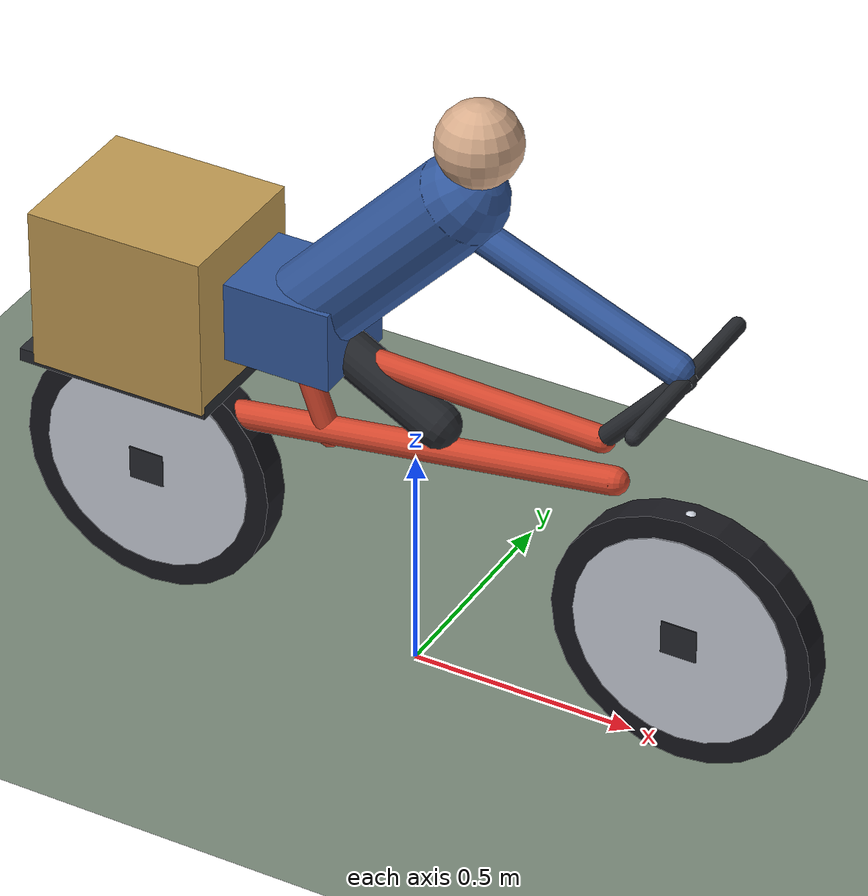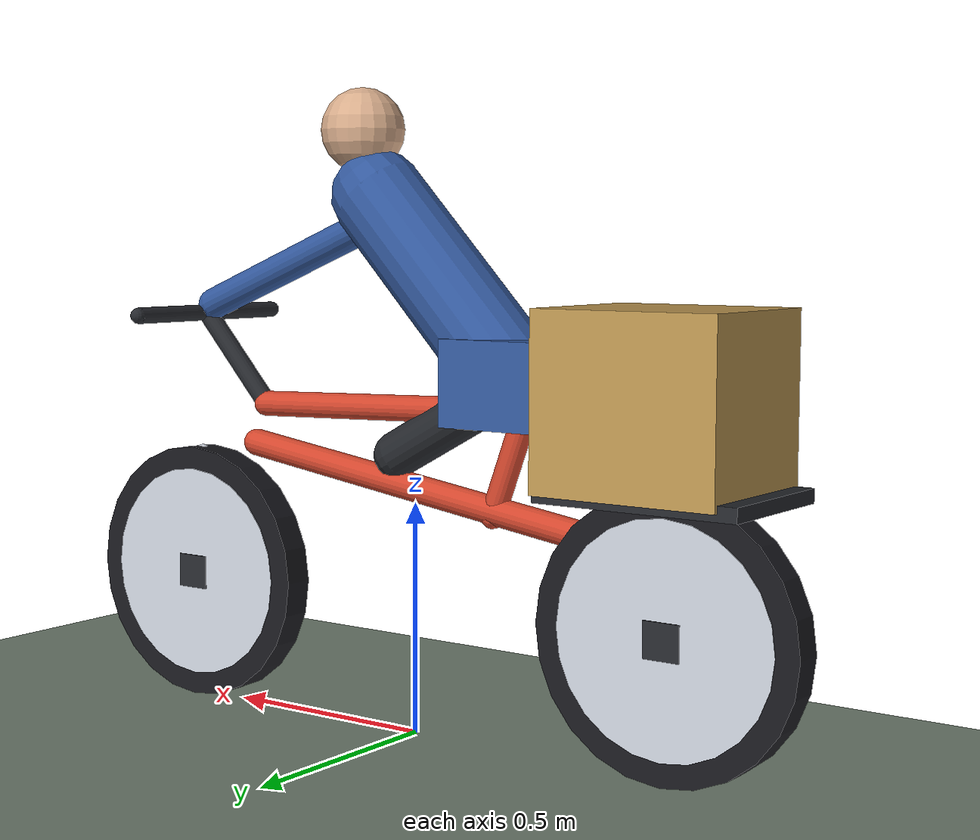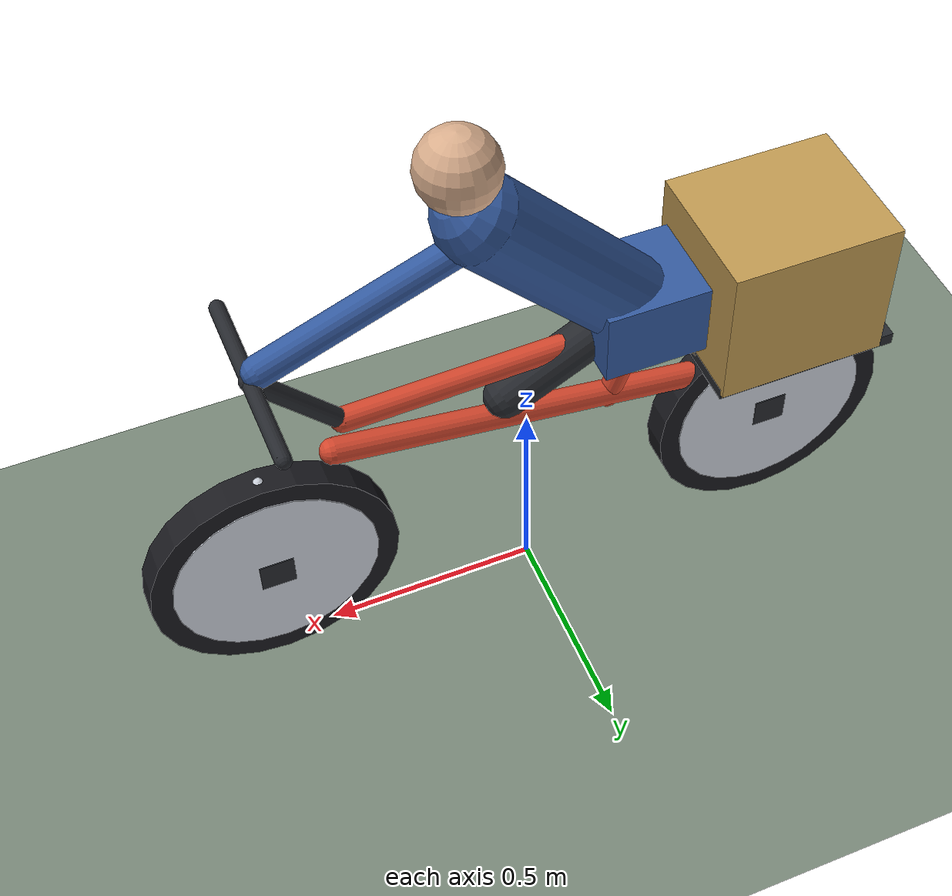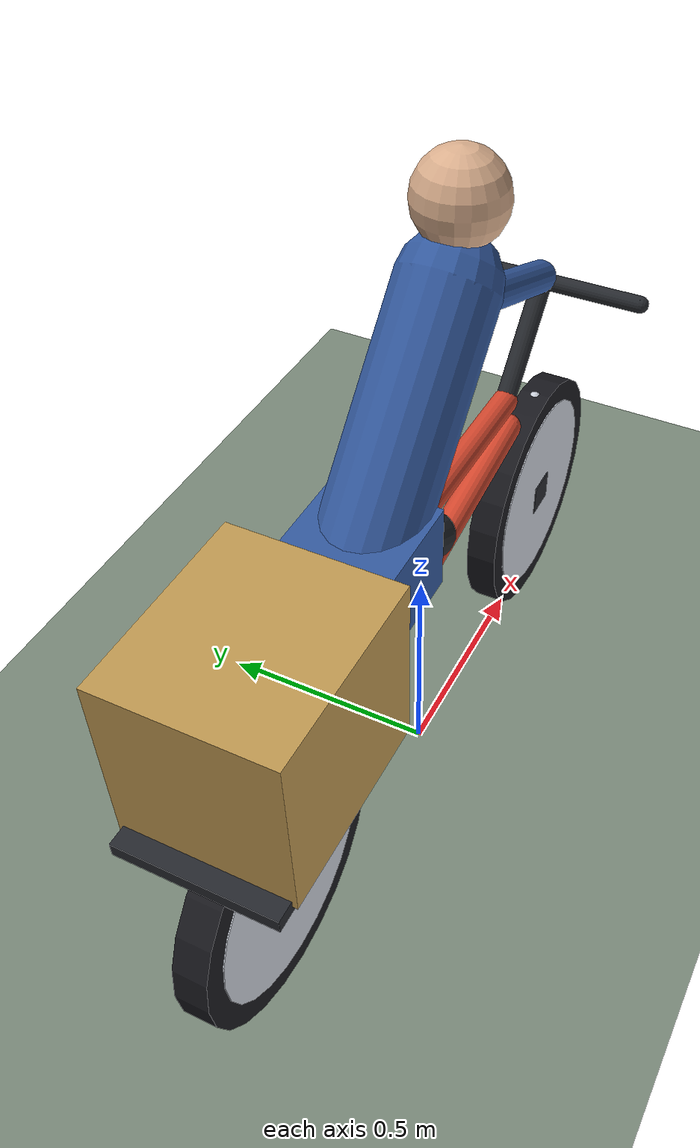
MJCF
<mujoco model="cargo_ebike_sagittal">
  <option timestep="0.002" gravity="0 0 -9.81" integrator="implicitfast"
          cone="elliptic" impratio="3">
    <flag eulerdamp="disable"/>
  </option>

  <statistic extent="2.5"/>

  <visual>
    <global offwidth="1280" offheight="720"/>
    <quality shadowsize="4096" offsamples="8"/>
    <headlight ambient="0.35 0.35 0.35" diffuse="0.55 0.55 0.55" specular="0.1 0.1 0.1"/>
    <map znear="0.05" zfar="60"/>
  </visual>

  <asset>
    <texture name="sky" type="skybox" builtin="gradient" rgb1="0.62 0.76 0.92"
             rgb2="0.90 0.94 0.98" width="512" height="512"/>
    <texture name="grid" type="2d" builtin="checker" rgb1="0.42 0.48 0.42"
             rgb2="0.52 0.58 0.52" width="512" height="512" mark="edge" markrgb="0.7 0.75 0.7"/>
    <material name="roadmat" texture="grid" texrepeat="70 6" reflectance="0.02"/>
    <material name="framemat" rgba="0.83 0.28 0.18 1" reflectance="0.15"/>
    <material name="darkmat"  rgba="0.15 0.16 0.18 1" reflectance="0.1"/>
    <material name="tyremat"  rgba="0.10 0.10 0.12 1" reflectance="0.02"/>
    <material name="rimmat"   rgba="0.80 0.82 0.86 1" reflectance="0.4"/>
    <material name="cargomat" rgba="0.75 0.60 0.32 1" reflectance="0.05"/>
    <material name="ridermat" rgba="0.20 0.35 0.62 1" reflectance="0.1"/>
    <material name="skinmat"  rgba="0.85 0.68 0.55 1"/>
  </asset>

  <default>
    <default class="deco">
      <!-- frame / rider / cargo: carry mass + inertia, no contact -->
      <geom contype="0" conaffinity="0" group="1"/>
    </default>
    <default class="wheel">
      <geom type="cylinder" material="tyremat" friction="1.3 0.01 0.0023"
            contype="1" conaffinity="1" condim="6" priority="1"
            quat="0.7071068 0.7071068 0 0"/>
    </default>
    <default class="susp">
      <joint type="slide" axis="0 0 1" damping="850" armature="0.5"/>
    </default>
  </default>

  <worldbody>
    <light name="sun" directional="true" diffuse="0.8 0.8 0.78" specular="0.25 0.25 0.25"
           pos="0 -4 8" dir="0.2 0.35 -1" castshadow="true"/>
    <geom name="road_placeholder" type="plane" size="200 20 0.1" material="roadmat"
          friction="1.3 0.01 0.0023" condim="6"/>

    <!-- 3/4 follow cameras: track the bike's centre of mass, fixed offset,
         no rotation (mode=trackcom) so pitch/heave are seen, not chased -->
    <camera name="follow" mode="trackcom" pos="1.4 -4.4 1.5"
            xyaxes="0.966 0.259 0 -0.090 0.336 0.938" fovy="46"/>
    <camera name="follow_far" mode="trackcom" pos="2.2 -7.8 2.5"
            xyaxes="0.966 0.259 0 -0.10 0.372 0.922" fovy="40"/>

    <!-- Sagittal-plane base: three joints on the single frame body
         (x-slide, z-heave, pitch-hinge). Roll/yaw/lateral do not exist. -->
    <body name="frame" pos="0 0 0.55">
          <joint name="slide_x" type="slide" axis="1 0 0"/>
          <joint name="slide_z" type="slide" axis="0 0 1"/>
          <joint name="pitch" type="hinge" axis="0 1 0"/>

          <geom class="deco" name="downtube" type="capsule" material="framemat"
                fromto="-0.55 0 -0.10  0.45 0 0.05" size="0.03" mass="14"/>
          <geom class="deco" name="toptube" type="capsule" material="framemat"
                fromto="-0.28 0 0.16  0.42 0 0.14" size="0.028" mass="6.5"/>
          <geom class="deco" name="seattube" type="capsule" material="framemat"
                fromto="-0.28 0 0.16  -0.20 0 -0.06" size="0.026" mass="2"/>
          <geom class="deco" name="steerer" type="capsule" material="darkmat"
                fromto="0.42 0 0.14  0.60 0 0.34" size="0.022" mass="2"/>
          <geom class="deco" name="bar" type="capsule" material="darkmat"
                fromto="0.60 -0.22 0.34  0.60 0.22 0.34" size="0.018" mass="1.5"/>
          <geom class="deco" name="saddle" type="box" material="darkmat"
                pos="-0.30 0 0.20" size="0.11 0.06 0.03" mass="1"/>

          <!-- rider: torso + head, seated and slightly forward (mass on frame) -->
          <geom class="deco" name="rider_torso" type="capsule" material="ridermat"
                fromto="-0.24 0 0.24  0.10 0 0.60" size="0.10" mass="46"/>
          <geom class="deco" name="rider_hips" type="box" material="ridermat"
                pos="-0.26 0 0.22" size="0.12 0.11 0.09" mass="22"/>
          <geom class="deco" name="rider_head" type="sphere" material="skinmat"
                pos="0.14 0 0.74" size="0.09" mass="5"/>
          <geom class="deco" name="rider_arm" type="capsule" material="ridermat"
                fromto="0.10 0 0.55  0.58 0 0.36" size="0.035" mass="4"/>
          <geom class="deco" name="rider_thigh" type="capsule" material="darkmat"
                fromto="-0.26 0 0.22  0.05 0 0.05" size="0.05" mass="9"/>

          <!-- rear cargo rack + payload (60 kg), set back and high => big
               rearward weight bias, so pitch/weight-transfer read clearly -->
          <geom class="deco" name="rack" type="box" material="darkmat"
                pos="-0.62 0 0.02" size="0.22 0.16 0.015" mass="2"/>
          <geom class="deco" name="cargo" type="box" material="cargomat"
                pos="-0.60 0 0.20" size="0.20 0.17 0.18" mass="58"/>

          <!-- REAR: telescopic suspension + driven wheel -->
          <body name="rear_fork" pos="-0.62 0 -0.26">
            <joint name="rear_susp" class="susp" stiffness="26000"
                   range="-0.10 0.05" springref="0"/>
            <geom class="deco" name="rear_stanchion" type="capsule" material="rimmat"
                  fromto="0 0 0.24  0 0 0.02" size="0.014" mass="0.5"/>
            <body name="rear_wheel" pos="0 0 0">
              <joint name="rear_spin" type="hinge" axis="0 1 0" armature="0.05" damping="0.01"/>
              <geom class="wheel" name="rear_tyre" size="0.29 0.035" mass="2.6"/>
              <geom class="deco" name="rear_rim" type="cylinder" size="0.24 0.037" material="rimmat"
                    quat="0.7071068 0.7071068 0 0" mass="0.2"/>
              <geom class="deco" name="rear_hub" type="box" size="0.04 0.04 0.038" material="darkmat" mass="0.2"/>
            </body>
          </body>

          <!-- FRONT: telescopic suspension + free-rolling wheel -->
          <body name="front_fork" pos="0.62 0 -0.26">
            <joint name="front_susp" class="susp" stiffness="15000"
                   range="-0.10 0.05" springref="0"/>
            <geom class="deco" name="front_stanchion" type="capsule" material="rimmat"
                  fromto="0 0 0.28  0 0 0.02" size="0.014" mass="0.5"/>
            <body name="front_wheel" pos="0 0 0">
              <joint name="front_spin" type="hinge" axis="0 1 0" armature="0.05" damping="0.01"/>
              <geom class="wheel" name="front_tyre" size="0.29 0.035" mass="2.6"/>
              <geom class="deco" name="front_rim" type="cylinder" size="0.24 0.037" material="rimmat"
                    quat="0.7071068 0.7071068 0 0" mass="0.2"/>
              <geom class="deco" name="front_hub" type="box" size="0.04 0.04 0.038" material="darkmat" mass="0.2"/>
            </body>
          </body>
    </body>
  </worldbody>

  <actuator>
    <!-- rear-wheel drive torque; ctrl set each step from the assist law -->
    <motor name="rear_drive" joint="rear_spin" gear="1" ctrlrange="-100 100"/>
  </actuator>

  <sensor>
    <jointvel name="v_long"      joint="slide_x"/>
    <jointpos name="heave"       joint="slide_z"/>
    <jointpos name="pitch_pos"   joint="pitch"/>
    <jointvel name="rear_wvel"   joint="rear_spin"/>
    <jointpos name="rear_travel" joint="rear_susp"/>
    <jointpos name="front_travel" joint="front_susp"/>
    <jointpos name="x_pos"       joint="slide_x"/>
  </sensor>
</mujoco>
